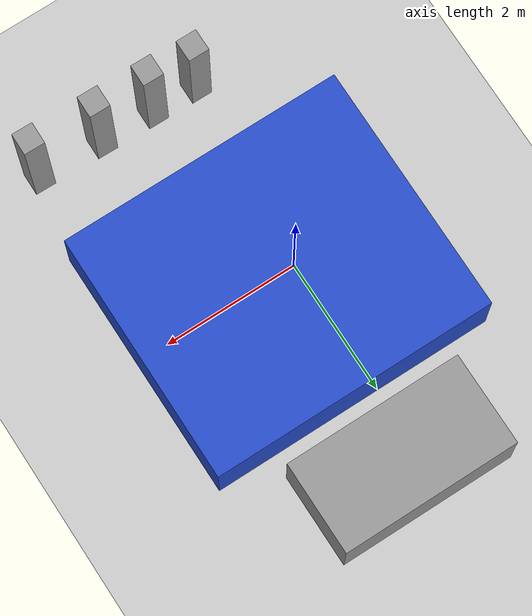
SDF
<sdf version="1.6">
 <world name="default">
  <light name="sun" type="directional">
   <pose>0 0 10 0 -0 0</pose>
   <diffuse>0.8 0.8 0.8 1</diffuse>
   <specular>0.2 0.2 0.2 1</specular>
   <attenuation>
    <range>1000</range>
    <constant>0.9</constant>
    <linear>0.01</linear>
    <quadratic>0.001</quadratic>
   </attenuation>
   <direction>-0.5 0.1 -0.9</direction>
  </light>
  <model name="ground_plane">
   <static>1</static>
   <link name="link">
    <collision name="collision">
     <geometry><plane><normal>0 0 1</normal><size>100 100</size></plane></geometry>
     <surface>
      <contact><collide_bitmask>65535</collide_bitmask></contact>
      <friction><ode><mu>100</mu><mu2>50</mu2></ode></friction>
     </surface>
    </collision>
    <visual name="visual">
     <cast_shadows>0</cast_shadows>
     <geometry><plane><normal>0 0 1</normal><size>100 100</size></plane></geometry>
     <material>
      <script><uri>file://media/materials/scripts/gazebo.material</uri><name>Gazebo/Grey</name></script>
     </material>
    </visual>
   </link>
  </model>
  <gravity>0 0 -9.8</gravity>
  <magnetic_field>6e-06 2.3e-05 -4.2e-05</magnetic_field>
  <atmosphere type="adiabatic"/>
  <physics name="default_physics" default="0" type="ode">
   <max_step_size>0.001</max_step_size>
   <real_time_factor>1</real_time_factor>
   <real_time_update_rate>1000</real_time_update_rate>
  </physics>
  <scene><ambient>0.4 0.4 0.4 1</ambient><background>0.7 0.7 0.7 1</background><shadows>1</shadows></scene>
  <spherical_coordinates>
   <surface_model>EARTH_WGS84</surface_model>
   <latitude_deg>0</latitude_deg>
   <longitude_deg>0</longitude_deg>
   <elevation>0</elevation>
   <heading_deg>0</heading_deg>
  </spherical_coordinates>
  <model name="unit_box">
   <pose>0.379388 0.169097 0.495673 -0.002097 0 0</pose>
   <static>1</static>
   <link name="link">
    <inertial>
     <mass>1</mass>
     <inertia>
      <ixx>0.166667</ixx>
      <ixy>0</ixy>
      <ixz>0</ixz>
      <iyy>0.166667</iyy>
      <iyz>0</iyz>
      <izz>0.166667</izz>
     </inertia>
    </inertial>
    <collision name="collision"><geometry><box><size>4.1959 3.70705 1</size></box></geometry></collision>
    <visual name="visual">
     <geometry><box><size>4.1959 3.70705 1</size></box></geometry>
     <material>
      <script><name>Gazebo/Blue</name><uri>file://media/materials/scripts/gazebo.material</uri></script>
     </material>
    </visual>
   </link>
  </model>
  <model name="unit_box_0">
   <pose>0.344226 3.03474 0.499918 0 -6.3e-05 0.000334</pose>
   <link name="link">
    <inertial>
     <mass>1</mass>
     <inertia>
      <ixx>0.166667</ixx>
      <ixy>0</ixy>
      <ixz>0</ixz>
      <iyy>0.166667</iyy>
      <iyz>0</iyz>
      <izz>0.166667</izz>
     </inertia>
    </inertial>
    <collision name="collision"><geometry><box><size>2.61362 1.36704 1</size></box></geometry></collision>
    <visual name="visual">
     <geometry><box><size>2.61362 1.36704 1</size></box></geometry>
     <material>
      <script><name>Gazebo/Grey</name><uri>file://media/materials/scripts/gazebo.material</uri></script>
     </material>
    </visual>
   </link>
  </model>
  <model name="unit_box_0_clone">
   <pose>0.438228 -2.83089 0.882215 0 -0 -0.009869</pose>
   <link name="link">
    <inertial>
     <mass>1</mass>
     <inertia>
      <ixx>0.166667</ixx>
      <ixy>0</ixy>
      <ixz>0</ixz>
      <iyy>0.166667</iyy>
      <iyz>0</iyz>
      <izz>0.166667</izz>
     </inertia>
    </inertial>
    <collision name="collision"><geometry><box><size>0.304501 0.323873 1.76443</size></box></geometry></collision>
    <visual name="visual">
     <geometry><box><size>0.304501 0.323873 1.76443</size></box></geometry>
     <material>
      <script><name>Gazebo/Grey</name><uri>file://media/materials/scripts/gazebo.material</uri></script>
     </material>
    </visual>
   </link>
  </model>
  <model name="unit_box_0_clone_0">
   <pose>-0.246854 -2.82133 0.843884 6e-06 -1e-06 0.000795</pose>
   <link name="link">
    <inertial>
     <mass>1</mass>
     <inertia>
      <ixx>0.166667</ixx>
      <ixy>0</ixy>
      <ixz>0</ixz>
      <iyy>0.166667</iyy>
      <iyz>0</iyz>
      <izz>0.166667</izz>
     </inertia>
    </inertial>
    <collision name="collision"><geometry><box><size>0.304501 0.323873 1.68779</size></box></geometry></collision>
    <visual name="visual">
     <geometry><box><size>0.304501 0.323873 1.68779</size></box></geometry>
     <material>
      <script><name>Gazebo/Grey</name><uri>file://media/materials/scripts/gazebo.material</uri></script>
     </material>
    </visual>
   </link>
  </model>
  <model name="unit_box_0_clone_clone">
   <pose>1.24272 -2.84429 0.88222 0 0 -0.009825</pose>
   <link name="link">
    <inertial>
     <mass>1</mass>
     <inertia>
      <ixx>0.166667</ixx>
      <ixy>0</ixy>
      <ixz>0</ixz>
      <iyy>0.166667</iyy>
      <iyz>0</iyz>
      <izz>0.166667</izz>
     </inertia>
    </inertial>
    <collision name="collision"><geometry><box><size>0.304501 0.323873 1.76444</size></box></geometry></collision>
    <visual name="visual">
     <geometry><box><size>0.304501 0.323873 1.76444</size></box></geometry>
     <material>
      <script><name>Gazebo/Grey</name><uri>file://media/materials/scripts/gazebo.material</uri></script>
     </material>
    </visual>
   </link>
  </model>
  <model name="unit_box_0_clone_clone_0">
   <pose>2.21104 -2.87276 0.88222 -1e-06 0 -0.009754</pose>
   <link name="link">
    <inertial>
     <mass>1</mass>
     <inertia>
      <ixx>0.166667</ixx>
      <ixy>0</ixy>
      <ixz>0</ixz>
      <iyy>0.166667</iyy>
      <iyz>0</iyz>
      <izz>0.166667</izz>
     </inertia>
    </inertial>
    <collision name="collision"><geometry><box><size>0.304501 0.323873 1.76444</size></box></geometry></collision>
    <visual name="visual">
     <geometry><box><size>0.304501 0.323873 1.76444</size></box></geometry>
     <material>
      <script><name>Gazebo/Grey</name><uri>file://media/materials/scripts/gazebo.material</uri></script>
     </material>
    </visual>
   </link>
  </model>
 </world>
</sdf>
